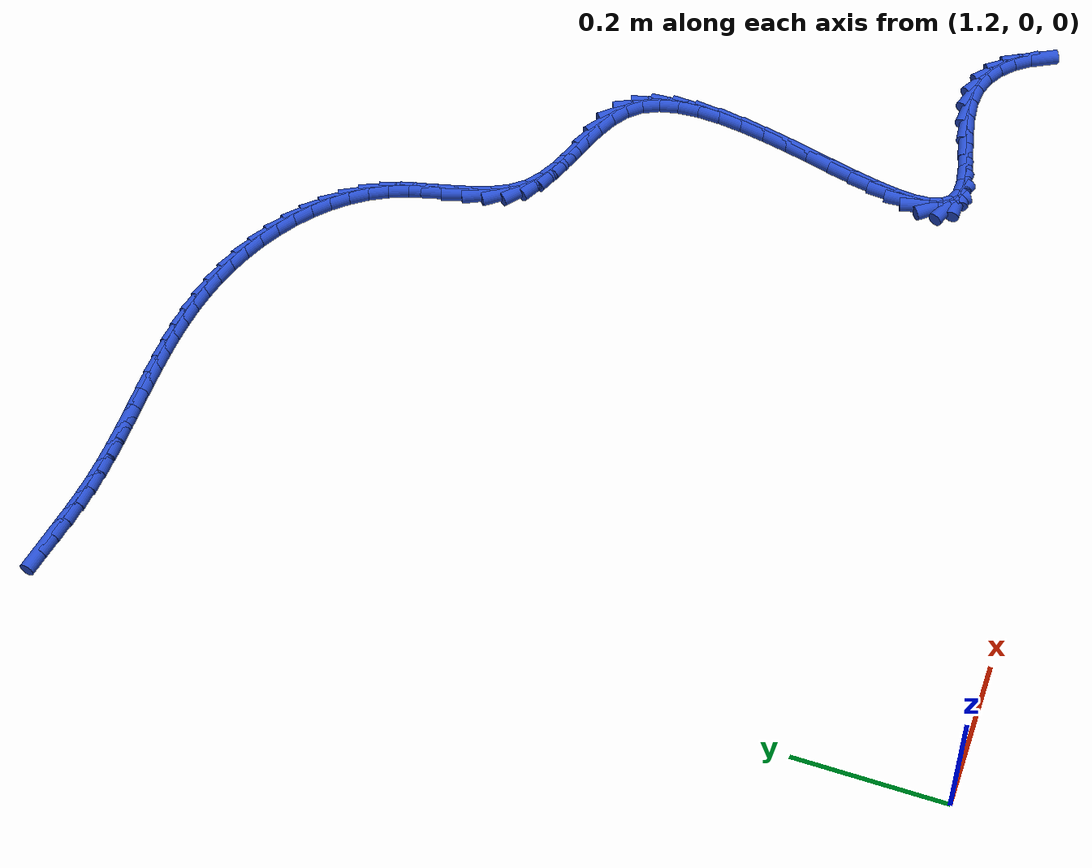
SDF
<sdf version="1.6">
 <world name="default">
  <model name="ground_plane">
   <static>1</static>
   <link name="link">
    <collision name="collision">
     <geometry><plane><normal>0 0 1</normal><size>100 100</size></plane></geometry>
     <surface><friction><ode><mu>100</mu><mu2>50</mu2></ode></friction></surface>
    </collision>
    <visual name="visual">
     <cast_shadows>0</cast_shadows>
     <geometry><plane><normal>0 0 1</normal><size>100 100</size></plane></geometry>
     <material>
      <script><uri>file://media/materials/scripts/gazebo.material</uri><name>Gazebo/WhiteGlow</name></script>
     </material>
    </visual>
   </link>
  </model>
  <model name="line">
   <link name="link_68">
    <pose>1.1815536571658067 1.1746899755779956 0.01 0 1.57 -0.18526324865048763</pose>
    <collision name="collision">
     <geometry><cylinder><radius>0.01</radius><length>0.08</length></cylinder></geometry>
    </collision>
    <visual name="visual">
     <material>
      <script><name>Gazebo/Blue</name><uri>file://media/materials/scripts/gazebo.material</uri></script>
     </material>
     <geometry><cylinder><radius>0.01</radius><length>0.08</length></cylinder></geometry>
    </visual>
   </link>
   <link name="link_69">
    <pose>1.2085537794139747 1.1696298199660176 0.01 0 1.57 -0.17982394373652733</pose>
    <collision name="collision">
     <geometry><cylinder><radius>0.01</radius><length>0.08</length></cylinder></geometry>
    </collision>
    <visual name="visual">
     <material>
      <script><name>Gazebo/Blue</name><uri>file://media/materials/scripts/gazebo.material</uri></script>
     </material>
     <geometry><cylinder><radius>0.01</radius><length>0.08</length></cylinder></geometry>
    </visual>
   </link>
   <link name="link_70">
    <pose>1.2356087557390671 1.1647115594297375 0.01 0 1.57 -0.16078967873257932</pose>
    <collision name="collision">
     <geometry><cylinder><radius>0.01</radius><length>0.08</length></cylinder></geometry>
    </collision>
    <visual name="visual">
     <material>
      <script><name>Gazebo/Blue</name><uri>file://media/materials/scripts/gazebo.material</uri></script>
     </material>
     <geometry><cylinder><radius>0.01</radius><length>0.08</length></cylinder></geometry>
    </visual>
   </link>
   <link name="link_71">
    <pose>1.2626956876264235 1.1603183351267772 0.01 0 1.57 -0.12803148840598597</pose>
    <collision name="collision">
     <geometry><cylinder><radius>0.01</radius><length>0.08</length></cylinder></geometry>
    </collision>
    <visual name="visual">
     <material>
      <script><name>Gazebo/Blue</name><uri>file://media/materials/scripts/gazebo.material</uri></script>
     </material>
     <geometry><cylinder><radius>0.01</radius><length>0.08</length></cylinder></geometry>
    </visual>
   </link>
   <link name="link_72">
    <pose>1.2897917710052533 1.1568301026060317 0.01 0 1.57 -0.08913488115919549</pose>
    <collision name="collision">
     <geometry><cylinder><radius>0.01</radius><length>0.08</length></cylinder></geometry>
    </collision>
    <visual name="visual">
     <material>
      <script><name>Gazebo/Blue</name><uri>file://media/materials/scripts/gazebo.material</uri></script>
     </material>
     <geometry><cylinder><radius>0.01</radius><length>0.08</length></cylinder></geometry>
    </visual>
   </link>
   <link name="link_73">
    <pose>1.3168806557968902 1.154409123098259 0.01 0 1.57 -0.057004540363658304</pose>
    <collision name="collision">
     <geometry><cylinder><radius>0.01</radius><length>0.08</length></cylinder></geometry>
    </collision>
    <visual name="visual">
     <material>
      <script><name>Gazebo/Blue</name><uri>file://media/materials/scripts/gazebo.material</uri></script>
     </material>
     <geometry><cylinder><radius>0.01</radius><length>0.08</length></cylinder></geometry>
    </visual>
   </link>
   <link name="link_74">
    <pose>1.343956476700726 1.1528640043798208 0.01 0 1.57 -0.03299326368305219</pose>
    <collision name="collision">
     <geometry><cylinder><radius>0.01</radius><length>0.08</length></cylinder></geometry>
    </collision>
    <visual name="visual">
     <material>
      <script><name>Gazebo/Blue</name><uri>file://media/materials/scripts/gazebo.material</uri></script>
     </material>
     <geometry><cylinder><radius>0.01</radius><length>0.08</length></cylinder></geometry>
    </visual>
   </link>
   <link name="link_75">
    <pose>1.3710143290031198 1.1519709534554425 0.01 0 1.57 -0.017189965091219093</pose>
    <collision name="collision">
     <geometry><cylinder><radius>0.01</radius><length>0.08</length></cylinder></geometry>
    </collision>
    <visual name="visual">
     <material>
      <script><name>Gazebo/Blue</name><uri>file://media/materials/scripts/gazebo.material</uri></script>
     </material>
     <geometry><cylinder><radius>0.01</radius><length>0.08</length></cylinder></geometry>
    </visual>
   </link>
   <link name="link_76">
    <pose>1.3980493079904308 1.1515061773298487 0.01 0 1.57 -0.009637661575018781</pose>
    <collision name="collision">
     <geometry><cylinder><radius>0.01</radius><length>0.08</length></cylinder></geometry>
    </collision>
    <visual name="visual">
     <material>
      <script><name>Gazebo/Blue</name><uri>file://media/materials/scripts/gazebo.material</uri></script>
     </material>
     <geometry><cylinder><radius>0.01</radius><length>0.08</length></cylinder></geometry>
    </visual>
   </link>
   <link name="link_77">
    <pose>1.425056508949019 1.151245883007767 0.01 0 1.57 -0.01036517124153411</pose>
    <collision name="collision">
     <geometry><cylinder><radius>0.01</radius><length>0.08</length></cylinder></geometry>
    </collision>
    <visual name="visual">
     <material>
      <script><name>Gazebo/Blue</name><uri>file://media/materials/scripts/gazebo.material</uri></script>
     </material>
     <geometry><cylinder><radius>0.01</radius><length>0.08</length></cylinder></geometry>
    </visual>
   </link>
   <link name="link_78">
    <pose>1.4520310271652435 1.1509662774939213 0.01 0 1.57 -0.019402511415847007</pose>
    <collision name="collision">
     <geometry><cylinder><radius>0.01</radius><length>0.08</length></cylinder></geometry>
    </collision>
    <visual name="visual">
     <material>
      <script><name>Gazebo/Blue</name><uri>file://media/materials/scripts/gazebo.material</uri></script>
     </material>
     <geometry><cylinder><radius>0.01</radius><length>0.08</length></cylinder></geometry>
    </visual>
   </link>
   <link name="link_79">
    <pose>1.4789679579254635 1.1504435677930385 0.01 0 1.57 -0.03677937423734696</pose>
    <collision name="collision">
     <geometry><cylinder><radius>0.01</radius><length>0.08</length></cylinder></geometry>
    </collision>
    <visual name="visual">
     <material>
      <script><name>Gazebo/Blue</name><uri>file://media/materials/scripts/gazebo.material</uri></script>
     </material>
     <geometry><cylinder><radius>0.01</radius><length>0.08</length></cylinder></geometry>
    </visual>
   </link>
   <link name="link_80">
    <pose>1.5058623965160378 1.1494539609098438 0.01 0 1.57 -0.06250625986233037</pose>
    <collision name="collision">
     <geometry><cylinder><radius>0.01</radius><length>0.08</length></cylinder></geometry>
    </collision>
    <visual name="visual">
     <material>
      <script><name>Gazebo/Blue</name><uri>file://media/materials/scripts/gazebo.material</uri></script>
     </material>
     <geometry><cylinder><radius>0.01</radius><length>0.08</length></cylinder></geometry>
    </visual>
   </link>
   <link name="link_81">
    <pose>1.532709438223327 1.1477736638490628 0.01 0 1.57 -0.09653814247950336</pose>
    <collision name="collision">
     <geometry><cylinder><radius>0.01</radius><length>0.08</length></cylinder></geometry>
    </collision>
    <visual name="visual">
     <material>
      <script><name>Gazebo/Blue</name><uri>file://media/materials/scripts/gazebo.material</uri></script>
     </material>
     <geometry><cylinder><radius>0.01</radius><length>0.08</length></cylinder></geometry>
    </visual>
   </link>
   <link name="link_82">
    <pose>1.5595041783336898 1.1451788836154209 0.01 0 1.57 -0.13872183035855545</pose>
    <collision name="collision">
     <geometry><cylinder><radius>0.01</radius><length>0.08</length></cylinder></geometry>
    </collision>
    <visual name="visual">
     <material>
      <script><name>Gazebo/Blue</name><uri>file://media/materials/scripts/gazebo.material</uri></script>
     </material>
     <geometry><cylinder><radius>0.01</radius><length>0.08</length></cylinder></geometry>
    </visual>
   </link>
   <link name="link_83">
    <pose>1.586241712133486 1.1414458272136445 0.01 0 1.57 -0.18873126055472172</pose>
    <collision name="collision">
     <geometry><cylinder><radius>0.01</radius><length>0.08</length></cylinder></geometry>
    </collision>
    <visual name="visual">
     <material>
      <script><name>Gazebo/Blue</name><uri>file://media/materials/scripts/gazebo.material</uri></script>
     </material>
     <geometry><cylinder><radius>0.01</radius><length>0.08</length></cylinder></geometry>
    </visual>
   </link>
   <link name="link_84">
    <pose>1.6129171349090736 1.1363507016484586 0.01 0 1.57 -0.24600013870416654</pose>
    <collision name="collision">
     <geometry><cylinder><radius>0.01</radius><length>0.08</length></cylinder></geometry>
    </collision>
    <visual name="visual">
     <material>
      <script><name>Gazebo/Blue</name><uri>file://media/materials/scripts/gazebo.material</uri></script>
     </material>
     <geometry><cylinder><radius>0.01</radius><length>0.08</length></cylinder></geometry>
    </visual>
   </link>
   <link name="link_85">
    <pose>1.6395255419468133 1.129669713924589 0.01 0 1.57 -0.3088839619284904</pose>
    <collision name="collision">
     <geometry><cylinder><radius>0.01</radius><length>0.08</length></cylinder></geometry>
    </collision>
    <visual name="visual">
     <material>
      <script><name>Gazebo/Blue</name><uri>file://media/materials/scripts/gazebo.material</uri></script>
     </material>
     <geometry><cylinder><radius>0.01</radius><length>0.08</length></cylinder></geometry>
    </visual>
   </link>
   <link name="link_86">
    <pose>1.66601552103198 1.1212168307395938 0.01 0 1.57 -0.37407930000953377</pose>
    <collision name="collision">
     <geometry><cylinder><radius>0.01</radius><length>0.08</length></cylinder></geometry>
    </collision>
    <visual name="visual">
     <material>
      <script><name>Gazebo/Blue</name><uri>file://media/materials/scripts/gazebo.material</uri></script>
     </material>
     <geometry><cylinder><radius>0.01</radius><length>0.08</length></cylinder></geometry>
    </visual>
   </link>
   <link name="link_87">
    <pose>1.6921485016399744 1.1109579736397461 0.01 0 1.57 -0.4419357950561112</pose>
    <collision name="collision">
     <geometry><cylinder><radius>0.01</radius><length>0.08</length></cylinder></geometry>
    </collision>
    <visual name="visual">
     <material>
      <script><name>Gazebo/Blue</name><uri>file://media/materials/scripts/gazebo.material</uri></script>
     </material>
     <geometry><cylinder><radius>0.01</radius><length>0.08</length></cylinder></geometry>
    </visual>
   </link>
   <link name="link_88">
    <pose>1.7176388398836153 1.098897283290181 0.01 0 1.57 -0.5136945303858952</pose>
    <collision name="collision">
     <geometry><cylinder><radius>0.01</radius><length>0.08</length></cylinder></geometry>
    </collision>
    <visual name="visual">
     <material>
      <script><name>Gazebo/Blue</name><uri>file://media/materials/scripts/gazebo.material</uri></script>
     </material>
     <geometry><cylinder><radius>0.01</radius><length>0.08</length></cylinder></geometry>
    </visual>
   </link>
   <link name="link_89">
    <pose>1.742200891875336 1.0850389003563425 0.01 0 1.57 -0.5905636771110944</pose>
    <collision name="collision">
     <geometry><cylinder><radius>0.01</radius><length>0.08</length></cylinder></geometry>
    </collision>
    <visual name="visual">
     <material>
      <script><name>Gazebo/Blue</name><uri>file://media/materials/scripts/gazebo.material</uri></script>
     </material>
     <geometry><cylinder><radius>0.01</radius><length>0.08</length></cylinder></geometry>
    </visual>
   </link>
   <link name="link_90">
    <pose>1.7655490137275702 1.0693869655036747 0.01 0 1.57 -0.6736937232581652</pose>
    <collision name="collision">
     <geometry><cylinder><radius>0.01</radius><length>0.08</length></cylinder></geometry>
    </collision>
    <visual name="visual">
     <material>
      <script><name>Gazebo/Blue</name><uri>file://media/materials/scripts/gazebo.material</uri></script>
     </material>
     <geometry><cylinder><radius>0.01</radius><length>0.08</length></cylinder></geometry>
    </visual>
   </link>
   <link name="link_91">
    <pose>1.7873975615527533 1.0519456193976218 0.01 0 1.57 -0.7641055214797012</pose>
    <collision name="collision">
     <geometry><cylinder><radius>0.01</radius><length>0.08</length></cylinder></geometry>
    </collision>
    <visual name="visual">
     <material>
      <script><name>Gazebo/Blue</name><uri>file://media/materials/scripts/gazebo.material</uri></script>
     </material>
     <geometry><cylinder><radius>0.01</radius><length>0.08</length></cylinder></geometry>
    </visual>
   </link>
   <link name="link_92">
    <pose>1.8074608914633183 1.0327190027036282 0.01 0 1.57 -0.8625590720025218</pose>
    <collision name="collision">
     <geometry><cylinder><radius>0.01</radius><length>0.08</length></cylinder></geometry>
    </collision>
    <visual name="visual">
     <material>
      <script><name>Gazebo/Blue</name><uri>file://media/materials/scripts/gazebo.material</uri></script>
     </material>
     <geometry><cylinder><radius>0.01</radius><length>0.08</length></cylinder></geometry>
    </visual>
   </link>
   <link name="link_93">
    <pose>1.8254533595717002 1.0117112560871389 0.01 0 1.57 -0.9693601495024702</pose>
    <collision name="collision">
     <geometry><cylinder><radius>0.01</radius><length>0.08</length></cylinder></geometry>
    </collision>
    <visual name="visual">
     <material>
      <script><name>Gazebo/Blue</name><uri>file://media/materials/scripts/gazebo.material</uri></script>
     </material>
     <geometry><cylinder><radius>0.01</radius><length>0.08</length></cylinder></geometry>
    </visual>
   </link>
   <link name="link_94">
    <pose>1.8410893219903324 0.9889265202135976 0.01 0 1.57 -1.0841280764789385</pose>
    <collision name="collision">
     <geometry><cylinder><radius>0.01</radius><length>0.08</length></cylinder></geometry>
    </collision>
    <visual name="visual">
     <material>
      <script><name>Gazebo/Blue</name><uri>file://media/materials/scripts/gazebo.material</uri></script>
     </material>
     <geometry><cylinder><radius>0.01</radius><length>0.08</length></cylinder></geometry>
    </visual>
   </link>
   <link name="link_95">
    <pose>1.8540831348316495 0.9643689357484484 0.01 0 1.57 -1.203291448595376</pose>
    <collision name="collision">
     <geometry><cylinder><radius>0.01</radius><length>0.08</length></cylinder></geometry>
    </collision>
    <visual name="visual">
     <material>
      <script><name>Gazebo/Blue</name><uri>file://media/materials/scripts/gazebo.material</uri></script>
     </material>
     <geometry><cylinder><radius>0.01</radius><length>0.08</length></cylinder></geometry>
    </visual>
   </link>
   <link name="link_96">
    <pose>1.8642057362882531 0.9380761535948464 0.01 0 1.57 -1.2926336592382888</pose>
    <collision name="collision">
     <geometry><cylinder><radius>0.01</radius><length>0.08</length></cylinder></geometry>
    </collision>
    <visual name="visual">
     <material>
      <script><name>Gazebo/Blue</name><uri>file://media/materials/scripts/gazebo.material</uri></script>
     </material>
     <geometry><cylinder><radius>0.01</radius><length>0.08</length></cylinder></geometry>
    </visual>
   </link>
   <link name="link_97">
    <pose>1.8720583967294706 0.9105775815609162 0.01 0 1.57 -1.3304058399900283</pose>
    <collision name="collision">
     <geometry><cylinder><radius>0.01</radius><length>0.08</length></cylinder></geometry>
    </collision>
    <visual name="visual">
     <material>
      <script><name>Gazebo/Blue</name><uri>file://media/materials/scripts/gazebo.material</uri></script>
     </material>
     <geometry><cylinder><radius>0.01</radius><length>0.08</length></cylinder></geometry>
    </visual>
   </link>
   <link name="link_98">
    <pose>1.8788733408247638 0.8827763045716152 0.01 0 1.57 -1.3179649684786867</pose>
    <collision name="collision">
     <geometry><cylinder><radius>0.01</radius><length>0.08</length></cylinder></geometry>
    </collision>
    <visual name="visual">
     <material>
      <script><name>Gazebo/Blue</name><uri>file://media/materials/scripts/gazebo.material</uri></script>
     </material>
     <geometry><cylinder><radius>0.01</radius><length>0.08</length></cylinder></geometry>
    </visual>
   </link>
   <link name="link_99">
    <pose>1.8858985548510283 0.8555847422248268 0.01 0 1.57 -1.2516076209180158</pose>
    <collision name="collision">
     <geometry><cylinder><radius>0.01</radius><length>0.08</length></cylinder></geometry>
    </collision>
    <visual name="visual">
     <material>
      <script><name>Gazebo/Blue</name><uri>file://media/materials/scripts/gazebo.material</uri></script>
     </material>
     <geometry><cylinder><radius>0.01</radius><length>0.08</length></cylinder></geometry>
    </visual>
   </link>
   <link name="link_100">
    <pose>1.8943820250851604 0.8299153141184341 0.01 0 1.57 -1.121983855942816</pose>
    <collision name="collision">
     <geometry><cylinder><radius>0.01</radius><length>0.08</length></cylinder></geometry>
    </collision>
    <visual name="visual">
     <material>
      <script><name>Gazebo/Blue</name><uri>file://media/materials/scripts/gazebo.material</uri></script>
     </material>
     <geometry><cylinder><radius>0.01</radius><length>0.08</length></cylinder></geometry>
    </visual>
   </link>
   <link name="link_101">
    <pose>1.9055717378040546 0.8066804398503203 0.01 0 1.57 -0.9199978726409455</pose>
    <collision name="collision">
     <geometry><cylinder><radius>0.01</radius><length>0.08</length></cylinder></geometry>
    </collision>
    <visual name="visual">
     <material>
      <script><name>Gazebo/Blue</name><uri>file://media/materials/scripts/gazebo.material</uri></script>
     </material>
     <geometry><cylinder><radius>0.01</radius><length>0.08</length></cylinder></geometry>
    </visual>
   </link>
   <link name="link_102">
    <pose>1.9207156792846076 0.7867925390183687 0.01 0 1.57 -0.6720053641263253</pose>
    <collision name="collision">
     <geometry><cylinder><radius>0.01</radius><length>0.08</length></cylinder></geometry>
    </collision>
    <visual name="visual">
     <material>
      <script><name>Gazebo/Blue</name><uri>file://media/materials/scripts/gazebo.material</uri></script>
     </material>
     <geometry><cylinder><radius>0.01</radius><length>0.08</length></cylinder></geometry>
    </visual>
   </link>
   <link name="link_103">
    <pose>1.9407061005800428 0.7708896903514935 0.01 0 1.57 -0.4874220211606704</pose>
    <collision name="collision">
     <geometry><cylinder><radius>0.01</radius><length>0.08</length></cylinder></geometry>
    </collision>
    <visual name="visual">
     <material>
      <script><name>Gazebo/Blue</name><uri>file://media/materials/scripts/gazebo.material</uri></script>
     </material>
     <geometry><cylinder><radius>0.01</radius><length>0.08</length></cylinder></geometry>
    </visual>
   </link>
   <link name="link_104">
    <pose>1.9646225511376731 0.7582120279820294 0.01 0 1.57 -0.3843628740787553</pose>
    <collision name="collision">
     <geometry><cylinder><radius>0.01</radius><length>0.08</length></cylinder></geometry>
    </collision>
    <visual name="visual">
     <material>
      <script><name>Gazebo/Blue</name><uri>file://media/materials/scripts/gazebo.material</uri></script>
     </material>
     <geometry><cylinder><radius>0.01</radius><length>0.08</length></cylinder></geometry>
    </visual>
   </link>
   <link name="link_105">
    <pose>1.9909686615279707 0.7475555408618121 0.01 0 1.57 -0.3461722801115489</pose>
    <collision name="collision">
     <geometry><cylinder><radius>0.01</radius><length>0.08</length></cylinder></geometry>
    </collision>
    <visual name="visual">
     <material>
      <script><name>Gazebo/Blue</name><uri>file://media/materials/scripts/gazebo.material</uri></script>
     </material>
     <geometry><cylinder><radius>0.01</radius><length>0.08</length></cylinder></geometry>
    </visual>
   </link>
   <link name="link_106">
    <pose>2.01824782460555 0.7377160346176347 0.01 0 1.57 -0.3655909318598594</pose>
    <collision name="collision">
     <geometry><cylinder><radius>0.01</radius><length>0.08</length></cylinder></geometry>
    </collision>
    <visual name="visual">
     <material>
      <script><name>Gazebo/Blue</name><uri>file://media/materials/scripts/gazebo.material</uri></script>
     </material>
     <geometry><cylinder><radius>0.01</radius><length>0.08</length></cylinder></geometry>
    </visual>
   </link>
   <link name="link_107">
    <pose>2.044963433225026 0.7274893148762908 0.01 0 1.57 -0.4469763562660002</pose>
    <collision name="collision">
     <geometry><cylinder><radius>0.01</radius><length>0.08</length></cylinder></geometry>
    </collision>
    <visual name="visual">
     <material>
      <script><name>Gazebo/Blue</name><uri>file://media/materials/scripts/gazebo.material</uri></script>
     </material>
     <geometry><cylinder><radius>0.01</radius><length>0.08</length></cylinder></geometry>
    </visual>
   </link>
   <link name="link_108">
    <pose>2.069618880241015 0.7156711872645738 0.01 0 1.57 -0.6057673898024297</pose>
    <collision name="collision">
     <geometry><cylinder><radius>0.01</radius><length>0.08</length></cylinder></geometry>
    </collision>
    <visual name="visual">
     <material>
      <script><name>Gazebo/Blue</name><uri>file://media/materials/scripts/gazebo.material</uri></script>
     </material>
     <geometry><cylinder><radius>0.01</radius><length>0.08</length></cylinder></geometry>
    </visual>
   </link>
   <link name="link_109">
    <pose>2.090717558508133 0.7010574574092775 0.01 0 1.57 -0.8569347469905741</pose>
    <collision name="collision">
     <geometry><cylinder><radius>0.01</radius><length>0.08</length></cylinder></geometry>
    </collision>
    <visual name="visual">
     <material>
      <script><name>Gazebo/Blue</name><uri>file://media/materials/scripts/gazebo.material</uri></script>
     </material>
     <geometry><cylinder><radius>0.01</radius><length>0.08</length></cylinder></geometry>
    </visual>
   </link>
   <link name="link_110">
    <pose>2.1068084804969236 0.6824824115826339 0.01 0 1.57 -1.1333097124968838</pose>
    <collision name="collision">
     <geometry><cylinder><radius>0.01</radius><length>0.08</length></cylinder></geometry>
    </collision>
    <visual name="visual">
     <material>
      <script><name>Gazebo/Blue</name><uri>file://media/materials/scripts/gazebo.material</uri></script>
     </material>
     <geometry><cylinder><radius>0.01</radius><length>0.08</length></cylinder></geometry>
    </visual>
   </link>
   <link name="link_111">
    <pose>2.1174830286884574 0.659659586571634 0.01 0 1.57 -1.3520034105570484</pose>
    <collision name="collision">
     <geometry><cylinder><radius>0.01</radius><length>0.08</length></cylinder></geometry>
    </collision>
    <visual name="visual">
     <material>
      <script><name>Gazebo/Blue</name><uri>file://media/materials/scripts/gazebo.material</uri></script>
     </material>
     <geometry><cylinder><radius>0.01</radius><length>0.08</length></cylinder></geometry>
    </visual>
   </link>
   <link name="link_112">
    <pose>2.123371146981459 0.6331785570882507 0.01 0 1.57 -1.5106729917152073</pose>
    <collision name="collision">
     <geometry><cylinder><radius>0.01</radius><length>0.08</length></cylinder></geometry>
    </collision>
    <visual name="visual">
     <material>
      <script><name>Gazebo/Blue</name><uri>file://media/materials/scripts/gazebo.material</uri></script>
     </material>
     <geometry><cylinder><radius>0.01</radius><length>0.08</length></cylinder></geometry>
    </visual>
   </link>
   <link name="link_113">
    <pose>2.1251476371688107 0.6036667359692405 0.01 0 1.57 1.5188198173007599</pose>
    <collision name="collision">
     <geometry><cylinder><radius>0.01</radius><length>0.08</length></cylinder></geometry>
    </collision>
    <visual name="visual">
     <material>
      <script><name>Gazebo/Blue</name><uri>file://media/materials/scripts/gazebo.material</uri></script>
     </material>
     <geometry><cylinder><radius>0.01</radius><length>0.08</length></cylinder></geometry>
    </visual>
   </link>
   <link name="link_114">
    <pose>2.123487301043392 0.5717515360513614 0.01 0 1.57 1.4402807645015494</pose>
    <collision name="collision">
     <geometry><cylinder><radius>0.01</radius><length>0.08</length></cylinder></geometry>
    </collision>
    <visual name="visual">
     <material>
      <script><name>Gazebo/Blue</name><uri>file://media/materials/scripts/gazebo.material</uri></script>
     </material>
     <geometry><cylinder><radius>0.01</radius><length>0.08</length></cylinder></geometry>
    </visual>
   </link>
   <link name="link_115">
    <pose>2.119064940398088 0.5380603701713704 0.01 0 1.57 1.38608242476214</pose>
    <collision name="collision">
     <geometry><cylinder><radius>0.01</radius><length>0.08</length></cylinder></geometry>
    </collision>
    <visual name="visual">
     <material>
      <script><name>Gazebo/Blue</name><uri>file://media/materials/scripts/gazebo.material</uri></script>
     </material>
     <geometry><cylinder><radius>0.01</radius><length>0.08</length></cylinder></geometry>
    </visual>
   </link>
   <link name="link_116">
    <pose>2.1125553570257787 0.5032206511660242 0.01 0 1.57 1.3504023469693904</pose>
    <collision name="collision">
     <geometry><cylinder><radius>0.01</radius><length>0.08</length></cylinder></geometry>
    </collision>
    <visual name="visual">
     <material>
      <script><name>Gazebo/Blue</name><uri>file://media/materials/scripts/gazebo.material</uri></script>
     </material>
     <geometry><cylinder><radius>0.01</radius><length>0.08</length></cylinder></geometry>
    </visual>
   </link>
   <link name="link_117">
    <pose>2.1046333527193473 0.4678597918720794 0.01 0 1.57 1.3299337635455288</pose>
    <collision name="collision">
     <geometry><cylinder><radius>0.01</radius><length>0.08</length></cylinder></geometry>
    </collision>
    <visual name="visual">
     <material>
      <script><name>Gazebo/Blue</name><uri>file://media/materials/scripts/gazebo.material</uri></script>
     </material>
     <geometry><cylinder><radius>0.01</radius><length>0.08</length></cylinder></geometry>
    </visual>
   </link>
   <link name="link_118">
    <pose>2.0959737292716754 0.43260520512629425 0.01 0 1.57 1.3233050897210497</pose>
    <collision name="collision">
     <geometry><cylinder><radius>0.01</radius><length>0.08</length></cylinder></geometry>
    </collision>
    <visual name="visual">
     <material>
      <script><name>Gazebo/Blue</name><uri>file://media/materials/scripts/gazebo.material</uri></script>
     </material>
     <geometry><cylinder><radius>0.01</radius><length>0.08</length></cylinder></geometry>
    </visual>
   </link>
   <link name="link_119">
    <pose>2.087251288475645 0.3980843037654253 0.01 0 1.57 1.330918716560646</pose>
    <collision name="collision">
     <geometry><cylinder><radius>0.01</radius><length>0.08</length></cylinder></geometry>
    </collision>
    <visual name="visual">
     <material>
      <script><name>Gazebo/Blue</name><uri>file://media/materials/scripts/gazebo.material</uri></script>
     </material>
     <geometry><cylinder><radius>0.01</radius><length>0.08</length></cylinder></geometry>
    </visual>
   </link>
   <link name="link_120">
    <pose>2.079140832124138 0.36492450062622966 0.01 0 1.57 1.355287084850199</pose>
    <collision name="collision">
     <geometry><cylinder><radius>0.01</radius><length>0.08</length></cylinder></geometry>
    </collision>
    <visual name="visual">
     <material>
      <script><name>Gazebo/Blue</name><uri>file://media/materials/scripts/gazebo.material</uri></script>
     </material>
     <geometry><cylinder><radius>0.01</radius><length>0.08</length></cylinder></geometry>
    </visual>
   </link>
   <link name="link_121">
    <pose>2.0723171620100365 0.3337532085454643 0.01 0 1.57 1.4021451420653352</pose>
    <collision name="collision">
     <geometry><cylinder><radius>0.01</radius><length>0.08</length></cylinder></geometry>
    </collision>
    <visual name="visual">
     <material>
      <script><name>Gazebo/Blue</name><uri>file://media/materials/scripts/gazebo.material</uri></script>
     </material>
     <geometry><cylinder><radius>0.01</radius><length>0.08</length></cylinder></geometry>
    </visual>
   </link>
   <link name="link_122">
    <pose>2.0674550799262223 0.3051978403598859 0.01 0 1.57 1.4830916878284077</pose>
    <collision name="collision">
     <geometry><cylinder><radius>0.01</radius><length>0.08</length></cylinder></geometry>
    </collision>
    <visual name="visual">
     <material>
      <script><name>Gazebo/Blue</name><uri>file://media/materials/scripts/gazebo.material</uri></script>
     </material>
     <geometry><cylinder><radius>0.01</radius><length>0.08</length></cylinder></geometry>
    </visual>
   </link>
   <link name="link_123">
    <pose>2.0652293876655774 0.27988580890625236 0.01 0 1.57 -1.5202129061200051</pose>
    <collision name="collision">
     <geometry><cylinder><radius>0.01</radius><length>0.08</length></cylinder></geometry>
    </collision>
    <visual name="visual">
     <material>
      <script><name>Gazebo/Blue</name><uri>file://media/materials/scripts/gazebo.material</uri></script>
     </material>
     <geometry><cylinder><radius>0.01</radius><length>0.08</length></cylinder></geometry>
    </visual>
   </link>
   <link name="link_124">
    <pose>2.066314887020984 0.2584445270213205 0.01 0 1.57 -1.2799592640358788</pose>
    <collision name="collision">
     <geometry><cylinder><radius>0.01</radius><length>0.08</length></cylinder></geometry>
    </collision>
    <visual name="visual">
     <material>
      <script><name>Gazebo/Blue</name><uri>file://media/materials/scripts/gazebo.material</uri></script>
     </material>
     <geometry><cylinder><radius>0.01</radius><length>0.08</length></cylinder></geometry>
    </visual>
   </link>
   <link name="link_125">
    <pose>2.071386379785325 0.2415014075418472 0.01 0 1.57 -0.8818622215392937</pose>
    <collision name="collision">
     <geometry><cylinder><radius>0.01</radius><length>0.08</length></cylinder></geometry>
    </collision>
    <visual name="visual">
     <material>
      <script><name>Gazebo/Blue</name><uri>file://media/materials/scripts/gazebo.material</uri></script>
     </material>
     <geometry><cylinder><radius>0.01</radius><length>0.08</length></cylinder></geometry>
    </visual>
   </link>
   <link name="link_126">
    <pose>2.081118667751481 0.22968386330458945 0.01 0 1.57 -0.38275424745184</pose>
    <collision name="collision">
     <geometry><cylinder><radius>0.01</radius><length>0.08</length></cylinder></geometry>
    </collision>
    <visual name="visual">
     <material>
      <script><name>Gazebo/Blue</name><uri>file://media/materials/scripts/gazebo.material</uri></script>
     </material>
     <geometry><cylinder><radius>0.01</radius><length>0.08</length></cylinder></geometry>
    </visual>
   </link>
   <link name="link_127">
    <pose>2.0961853483771957 0.22361786881594367 0.01 0 1.57 -0.014634941139348876</pose>
    <collision name="collision">
     <geometry><cylinder><radius>0.01</radius><length>0.08</length></cylinder></geometry>
    </collision>
    <visual name="visual">
     <material>
      <script><name>Gazebo/Blue</name><uri>file://media/materials/scripts/gazebo.material</uri></script>
     </material>
     <geometry><cylinder><radius>0.01</radius><length>0.08</length></cylinder></geometry>
    </visual>
   </link>
   <link name="link_128">
    <pose>2.116747186859281 0.22331692603427575 0.01 0 1.57 0.15590859646527716</pose>
    <collision name="collision">
     <geometry><cylinder><radius>0.01</radius><length>0.08</length></cylinder></geometry>
    </collision>
    <visual name="visual">
     <material>
      <script><name>Gazebo/Blue</name><uri>file://media/materials/scripts/gazebo.material</uri></script>
     </material>
     <geometry><cylinder><radius>0.01</radius><length>0.08</length></cylinder></geometry>
    </visual>
   </link>
   <link name="link_129">
    <pose>2.141656898250209 0.22723234033656234 0.01 0 1.57 0.22332736398730205</pose>
    <collision name="collision">
     <geometry><cylinder><radius>0.01</radius><length>0.08</length></cylinder></geometry>
    </collision>
    <visual name="visual">
     <material>
      <script><name>Gazebo/Blue</name><uri>file://media/materials/scripts/gazebo.material</uri></script>
     </material>
     <geometry><cylinder><radius>0.01</radius><length>0.08</length></cylinder></geometry>
    </visual>
   </link>
   <link name="link_130">
    <pose>2.169561667762668 0.23356995402294378 0.01 0 1.57 0.2315208941238889</pose>
    <collision name="collision">
     <geometry><cylinder><radius>0.01</radius><length>0.08</length></cylinder></geometry>
    </collision>
    <visual name="visual">
     <material>
      <script><name>Gazebo/Blue</name><uri>file://media/materials/scripts/gazebo.material</uri></script>
     </material>
     <geometry><cylinder><radius>0.01</radius><length>0.08</length></cylinder></geometry>
    </visual>
   </link>
   <link name="link_131">
    <pose>2.1991086806093447 0.2405356093935607 0.01 0 1.57 0.19198371974537679</pose>
    <collision name="collision">
     <geometry><cylinder><radius>0.01</radius><length>0.08</length></cylinder></geometry>
    </collision>
    <visual name="visual">
     <material>
      <script><name>Gazebo/Blue</name><uri>file://media/materials/scripts/gazebo.material</uri></script>
     </material>
     <geometry><cylinder><radius>0.01</radius><length>0.08</length></cylinder></geometry>
    </visual>
   </link>
   <link name="link_132">
    <pose>2.2289451220029277 0.24633514874855325 0.01 0 1.57 0.09835950571027531</pose>
    <collision name="collision">
     <geometry><cylinder><radius>0.01</radius><length>0.08</length></cylinder></geometry>
    </collision>
    <visual name="visual">
     <material>
      <script><name>Gazebo/Blue</name><uri>file://media/materials/scripts/gazebo.material</uri></script>
     </material>
     <geometry><cylinder><radius>0.01</radius><length>0.08</length></cylinder></geometry>
    </visual>
   </link>
   <link name="link_133">
    <pose>2.2577181771561037 0.24917441438806184 0.01 0 1.57 -0.06981259015616167</pose>
    <collision name="collision">
     <geometry><cylinder><radius>0.01</radius><length>0.08</length></cylinder></geometry>
    </collision>
    <visual name="visual">
     <material>
      <script><name>Gazebo/Blue</name><uri>file://media/materials/scripts/gazebo.material</uri></script>
     </material>
     <geometry><cylinder><radius>0.01</radius><length>0.08</length></cylinder></geometry>
    </visual>
   </link>
   <link name="link_134">
    <pose>2.2841198678410306 0.24732824371437634 0.01 0 1.57 -0.29401160155235767</pose>
    <collision name="collision">
     <geometry><cylinder><radius>0.01</radius><length>0.08</length></cylinder></geometry>
    </collision>
    <visual name="visual">
     <material>
      <script><name>Gazebo/Blue</name><uri>file://media/materials/scripts/gazebo.material</uri></script>
     </material>
     <geometry><cylinder><radius>0.01</radius><length>0.08</length></cylinder></geometry>
    </visual>
   </link>
   <link name="link_135">
    <pose>2.307589794250659 0.24022185788171216 0.01 0 1.57 -0.5272563952329161</pose>
    <collision name="collision">
     <geometry><cylinder><radius>0.01</radius><length>0.08</length></cylinder></geometry>
    </collision>
    <visual name="visual">
     <material>
      <script><name>Gazebo/Blue</name><uri>file://media/materials/scripts/gazebo.material</uri></script>
     </material>
     <geometry><cylinder><radius>0.01</radius><length>0.08</length></cylinder></geometry>
    </visual>
   </link>
   <link name="link_136">
    <pose>2.328184976311249 0.22823057185325732 0.01 0 1.57 -0.7467936954206583</pose>
    <collision name="collision">
     <geometry><cylinder><radius>0.01</radius><length>0.08</length></cylinder></geometry>
    </collision>
    <visual name="visual">
     <material>
      <script><name>Gazebo/Blue</name><uri>file://media/materials/scripts/gazebo.material</uri></script>
     </material>
     <geometry><cylinder><radius>0.01</radius><length>0.08</length></cylinder></geometry>
    </visual>
   </link>
   <link name="link_137">
    <pose>2.3459809398036526 0.2117581776507271 0.01 0 1.57 -0.937968919051005</pose>
    <collision name="collision">
     <geometry><cylinder><radius>0.01</radius><length>0.08</length></cylinder></geometry>
    </collision>
    <visual name="visual">
     <material>
      <script><name>Gazebo/Blue</name><uri>file://media/materials/scripts/gazebo.material</uri></script>
     </material>
     <geometry><cylinder><radius>0.01</radius><length>0.08</length></cylinder></geometry>
    </visual>
   </link>
   <link name="link_138">
    <pose>2.361053210508725 0.19120846729583715 0.01 0 1.57 -1.0968818363624138</pose>
    <collision name="collision">
     <geometry><cylinder><radius>0.01</radius><length>0.08</length></cylinder></geometry>
    </collision>
    <visual name="visual">
     <material>
      <script><name>Gazebo/Blue</name><uri>file://media/materials/scripts/gazebo.material</uri></script>
     </material>
     <geometry><cylinder><radius>0.01</radius><length>0.08</length></cylinder></geometry>
    </visual>
   </link>
  </model>
 </world>
</sdf>
